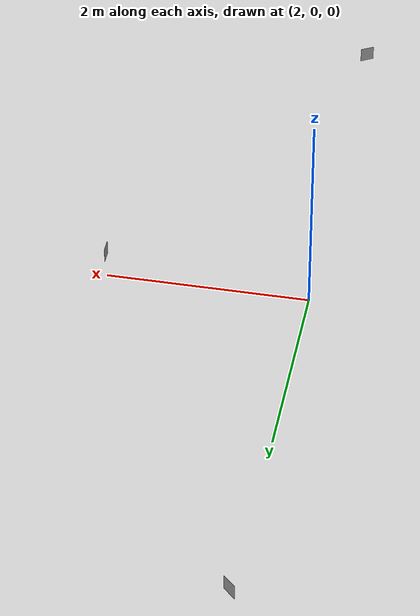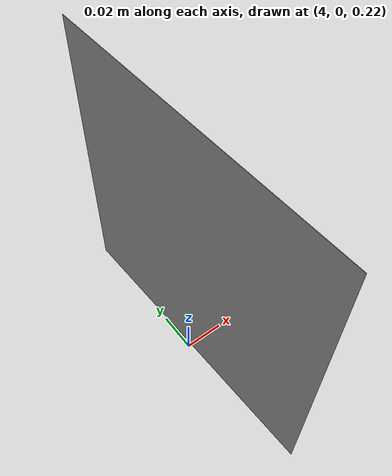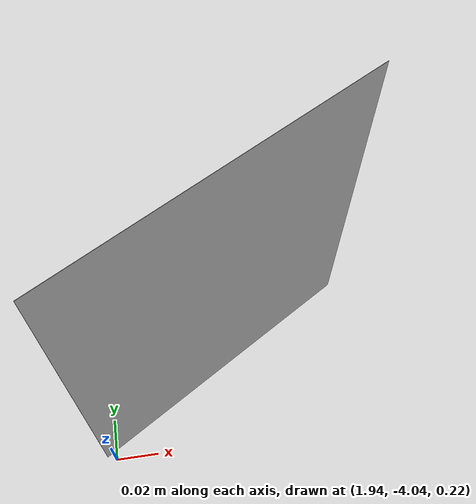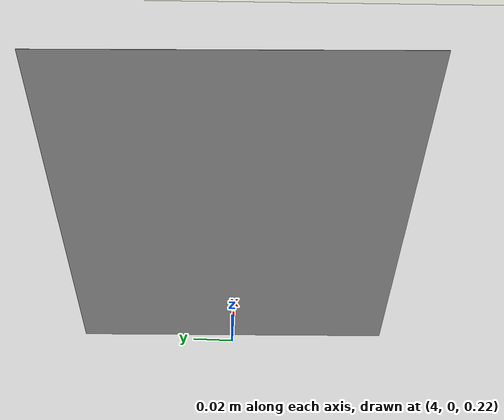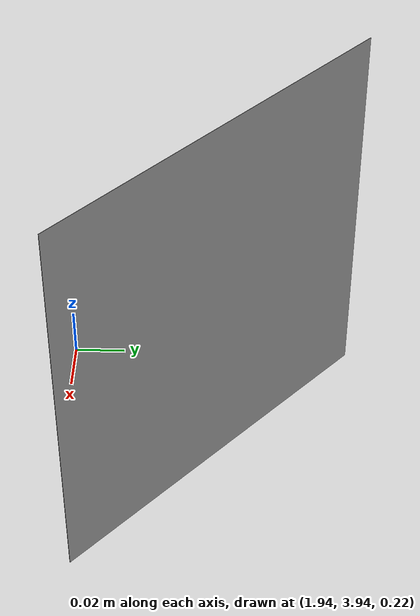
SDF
<?xml version="1.0" ?>
<sdf version="1.5">
  <world name="default">
    <!-- A global light source -->
    <include>
      <uri>model://sun</uri>
    </include>
    <model name="aruco_marker_0">
      <pose>2 4 0.3 0 0 0.826765</pose>
      <include>
        <name>aruco_marker_0</name>
        <uri>model://aruco_marker_0</uri>
      </include>
    </model>

    <model name="aruco_marker_1">
      <pose>4 0 0.3 0 0 0.034674</pose>
      <include>
        <name>aruco_marker_1</name>
        <uri>model://aruco_marker_1</uri>
      </include>
    </model>

    <model name="aruco_marker_2">
      <pose>2.0 -4 0.3 0 0 -1.018591</pose>
      <include>
        <name>aruco_marker_2</name>
        <uri>model://aruco_marker_2</uri>
      </include>
    </model>

    <!-- A ground plane -->
    <include>
      <uri>model://ground_plane</uri>
    </include>
    <gui fullscreen='0'>
      <camera name='user_camera'>
        <pose frame=''>-5.71006 -1.45788 2.22432 0 0.331643 0.180194</pose>
        <view_controller>orbit</view_controller>
        <projection_type>perspective</projection_type>
      </camera>
    </gui>
  </world>
</sdf>

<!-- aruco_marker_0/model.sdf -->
<sdf version="1.6">
  <model name="aruco_marker_0">
    <static>true</static>
    <link name="link">
      <gravity>false</gravity>
      <inertial>
        <pose>0 0 0 0 0 0</pose>
        <mass>0.001</mass>
        <inertia>
          <ixx>3.7499999999999997e-06</ixx>
          <ixy>0.0</ixy>
          <ixz>0.0</ixz>
          <iyy>1.8750008333333333e-06</iyy>
          <iyz>0.0</iyz>
          <izz>1.8750008333333333e-06</izz>
        </inertia>
      </inertial>
      <visual name="front_visual">
        <pose>0.00005 0 0 0 0 0</pose>
        <geometry>
          <box>
            <size>0.0001 0.15 0.15</size>
          </box>
        </geometry>
        <material>
          <script>
            <uri>model://aruco_marker_0/materials/scripts</uri>
            <uri>model://aruco_marker_0/materials/textures</uri>
            <name>aruco_marker_0</name>
          </script>
        </material>
      </visual>
      <!-- Hide the marker from the back -->
      <visual name="rear_visual">
        <pose>-0.00005 0 0 0 0 0</pose>
        <geometry>
          <box>
            <size>0.0001 0.15 0.15</size>
          </box>
        </geometry>
      </visual>
    </link>
  </model>
</sdf>

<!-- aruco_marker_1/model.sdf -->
<sdf version="1.6">
  <model name="aruco_marker_1">
    <static>true</static>
    <link name="link">
      <gravity>false</gravity>
      <inertial>
        <pose>0 0 0 0 0 0</pose>
        <mass>0.001</mass>
        <inertia>
          <ixx>3.7499999999999997e-06</ixx>
          <ixy>0.0</ixy>
          <ixz>0.0</ixz>
          <iyy>1.8750008333333333e-06</iyy>
          <iyz>0.0</iyz>
          <izz>1.8750008333333333e-06</izz>
        </inertia>
      </inertial>
      <visual name="front_visual">
        <pose>0.00005 0 0 0 0 0</pose>
        <geometry>
          <box>
            <size>0.0001 0.15 0.15</size>
          </box>
        </geometry>
        <material>
          <script>
            <uri>model://aruco_marker_1/materials/scripts</uri>
            <uri>model://aruco_marker_1/materials/textures</uri>
            <name>aruco_marker_1</name>
          </script>
        </material>
      </visual>
      <!-- Hide the marker from the back -->
      <visual name="rear_visual">
        <pose>-0.00005 0 0 0 0 0</pose>
        <geometry>
          <box>
            <size>0.0001 0.15 0.15</size>
          </box>
        </geometry>
      </visual>

    </link>
  </model>
</sdf>

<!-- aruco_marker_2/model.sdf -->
<sdf version="1.6">
  <model name="aruco_marker_2">
    <static>true</static>
    <link name="link">
      <gravity>false</gravity>
      <inertial>
        <pose>0 0 0 0 0 0</pose>
        <mass>0.001</mass>
        <inertia>
          <ixx>3.7499999999999997e-06</ixx>
          <ixy>0.0</ixy>
          <ixz>0.0</ixz>
          <iyy>1.8750008333333333e-06</iyy>
          <iyz>0.0</iyz>
          <izz>1.8750008333333333e-06</izz>
        </inertia>
      </inertial>
      <visual name="front_visual">
        <pose>0.00005 0 0 0 0 0</pose>
        <geometry>
          <box>
            <size>0.0001 0.15 0.15</size>
          </box>
        </geometry>
        <material>
          <script>
            <uri>model://aruco_marker_2/materials/scripts</uri>
            <uri>model://aruco_marker_2/materials/textures</uri>
            <name>aruco_marker_2</name>
          </script>
        </material>
      </visual>
      <!-- Hide the marker from the back -->
      <visual name="rear_visual">
        <pose>-0.00005 0 0 0 0 0</pose>
        <geometry>
          <box>
            <size>0.0001 0.15 0.15</size>
          </box>
        </geometry>
      </visual>
    </link>
  </model>
</sdf>
